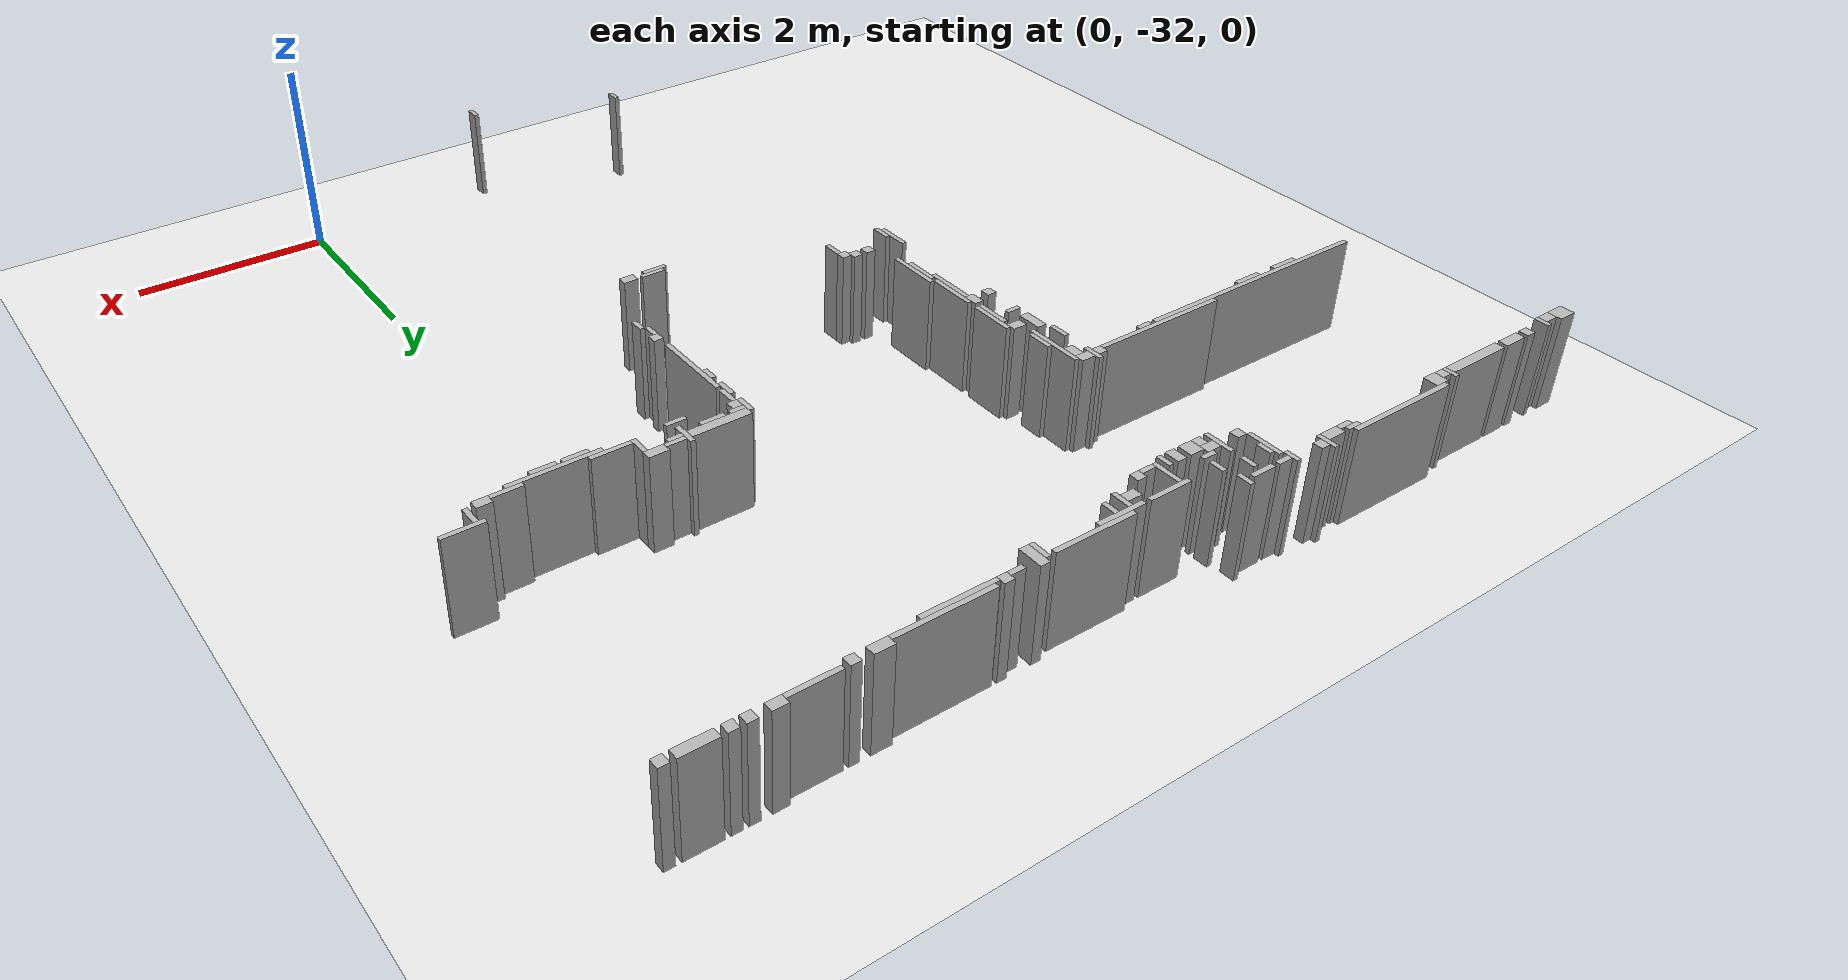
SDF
<sdf version="1.8">
 <world name="building">
  <model name="ground_plane">
   <static>true</static>
   <link name="link">
    <collision name="c"><geometry><plane><normal>0 0 1</normal><size>200 200</size></plane></geometry></collision>
    <visual name="v">
     <geometry><plane><normal>0 0 1</normal><size>200 200</size></plane></geometry>
     <material><ambient>0.9 0.9 0.9 1</ambient><diffuse>0.9 0.9 0.9 1</diffuse></material>
    </visual>
   </link>
  </model>
  <model name="walls">
   <static>true</static>
   <link name="wall_795">
    <pose>-4.975 -22.200 0.500 0 0 0</pose>
    <collision name="c"><geometry><box><size>0.050 0.200 1.000</size></box></geometry></collision>
    <visual name="v">
     <geometry><box><size>0.050 0.200 1.000</size></box></geometry>
     <material><ambient>0.6 0.6 0.6 1</ambient><diffuse>0.7 0.7 0.7 1</diffuse></material>
    </visual>
   </link>
   <link name="wall_801">
    <pose>-5.900 -22.175 0.500 0 0 0</pose>
    <collision name="c"><geometry><box><size>1.200 0.050 1.000</size></box></geometry></collision>
    <visual name="v">
     <geometry><box><size>1.200 0.050 1.000</size></box></geometry>
     <material><ambient>0.6 0.6 0.6 1</ambient><diffuse>0.7 0.7 0.7 1</diffuse></material>
    </visual>
   </link>
   <link name="wall_802">
    <pose>-4.900 -22.200 0.500 0 0 0</pose>
    <collision name="c"><geometry><box><size>0.100 0.100 1.000</size></box></geometry></collision>
    <visual name="v">
     <geometry><box><size>0.100 0.100 1.000</size></box></geometry>
     <material><ambient>0.6 0.6 0.6 1</ambient><diffuse>0.7 0.7 0.7 1</diffuse></material>
    </visual>
   </link>
   <link name="wall_803">
    <pose>-4.575 -22.225 0.500 0 0 0</pose>
    <collision name="c"><geometry><box><size>0.050 0.150 1.000</size></box></geometry></collision>
    <visual name="v">
     <geometry><box><size>0.050 0.150 1.000</size></box></geometry>
     <material><ambient>0.6 0.6 0.6 1</ambient><diffuse>0.7 0.7 0.7 1</diffuse></material>
    </visual>
   </link>
   <link name="wall_804">
    <pose>-4.025 -22.225 0.500 0 0 0</pose>
    <collision name="c"><geometry><box><size>0.050 0.150 1.000</size></box></geometry></collision>
    <visual name="v">
     <geometry><box><size>0.050 0.150 1.000</size></box></geometry>
     <material><ambient>0.6 0.6 0.6 1</ambient><diffuse>0.7 0.7 0.7 1</diffuse></material>
    </visual>
   </link>
   <link name="wall_814">
    <pose>-6.675 -22.275 0.500 0 0 0</pose>
    <collision name="c"><geometry><box><size>0.050 0.150 1.000</size></box></geometry></collision>
    <visual name="v">
     <geometry><box><size>0.050 0.150 1.000</size></box></geometry>
     <material><ambient>0.6 0.6 0.6 1</ambient><diffuse>0.7 0.7 0.7 1</diffuse></material>
    </visual>
   </link>
   <link name="wall_815">
    <pose>-6.475 -22.275 0.500 0 0 0</pose>
    <collision name="c"><geometry><box><size>0.150 0.150 1.000</size></box></geometry></collision>
    <visual name="v">
     <geometry><box><size>0.150 0.150 1.000</size></box></geometry>
     <material><ambient>0.6 0.6 0.6 1</ambient><diffuse>0.7 0.7 0.7 1</diffuse></material>
    </visual>
   </link>
   <link name="wall_816">
    <pose>-5.325 -22.225 0.500 0 0 0</pose>
    <collision name="c"><geometry><box><size>0.150 0.050 1.000</size></box></geometry></collision>
    <visual name="v">
     <geometry><box><size>0.150 0.050 1.000</size></box></geometry>
     <material><ambient>0.6 0.6 0.6 1</ambient><diffuse>0.7 0.7 0.7 1</diffuse></material>
    </visual>
   </link>
   <link name="wall_817">
    <pose>-5.100 -22.250 0.500 0 0 0</pose>
    <collision name="c"><geometry><box><size>0.200 0.100 1.000</size></box></geometry></collision>
    <visual name="v">
     <geometry><box><size>0.200 0.100 1.000</size></box></geometry>
     <material><ambient>0.6 0.6 0.6 1</ambient><diffuse>0.7 0.7 0.7 1</diffuse></material>
    </visual>
   </link>
   <link name="wall_818">
    <pose>-4.475 -22.225 0.500 0 0 0</pose>
    <collision name="c"><geometry><box><size>0.150 0.050 1.000</size></box></geometry></collision>
    <visual name="v">
     <geometry><box><size>0.150 0.050 1.000</size></box></geometry>
     <material><ambient>0.6 0.6 0.6 1</ambient><diffuse>0.7 0.7 0.7 1</diffuse></material>
    </visual>
   </link>
   <link name="wall_819">
    <pose>-4.225 -22.225 0.500 0 0 0</pose>
    <collision name="c"><geometry><box><size>0.250 0.050 1.000</size></box></geometry></collision>
    <visual name="v">
     <geometry><box><size>0.250 0.050 1.000</size></box></geometry>
     <material><ambient>0.6 0.6 0.6 1</ambient><diffuse>0.7 0.7 0.7 1</diffuse></material>
    </visual>
   </link>
   <link name="wall_829">
    <pose>-8.350 -22.325 0.500 0 0 0</pose>
    <collision name="c"><geometry><box><size>0.200 0.150 1.000</size></box></geometry></collision>
    <visual name="v">
     <geometry><box><size>0.200 0.150 1.000</size></box></geometry>
     <material><ambient>0.6 0.6 0.6 1</ambient><diffuse>0.7 0.7 0.7 1</diffuse></material>
    </visual>
   </link>
   <link name="wall_830">
    <pose>-8.075 -22.325 0.500 0 0 0</pose>
    <collision name="c"><geometry><box><size>0.050 0.150 1.000</size></box></geometry></collision>
    <visual name="v">
     <geometry><box><size>0.050 0.150 1.000</size></box></geometry>
     <material><ambient>0.6 0.6 0.6 1</ambient><diffuse>0.7 0.7 0.7 1</diffuse></material>
    </visual>
   </link>
   <link name="wall_831">
    <pose>-7.800 -22.300 0.500 0 0 0</pose>
    <collision name="c"><geometry><box><size>0.100 0.100 1.000</size></box></geometry></collision>
    <visual name="v">
     <geometry><box><size>0.100 0.100 1.000</size></box></geometry>
     <material><ambient>0.6 0.6 0.6 1</ambient><diffuse>0.7 0.7 0.7 1</diffuse></material>
    </visual>
   </link>
   <link name="wall_832">
    <pose>-7.575 -22.300 0.500 0 0 0</pose>
    <collision name="c"><geometry><box><size>0.250 0.100 1.000</size></box></geometry></collision>
    <visual name="v">
     <geometry><box><size>0.250 0.100 1.000</size></box></geometry>
     <material><ambient>0.6 0.6 0.6 1</ambient><diffuse>0.7 0.7 0.7 1</diffuse></material>
    </visual>
   </link>
   <link name="wall_833">
    <pose>-7.050 -22.300 0.500 0 0 0</pose>
    <collision name="c"><geometry><box><size>0.700 0.100 1.000</size></box></geometry></collision>
    <visual name="v">
     <geometry><box><size>0.700 0.100 1.000</size></box></geometry>
     <material><ambient>0.6 0.6 0.6 1</ambient><diffuse>0.7 0.7 0.7 1</diffuse></material>
    </visual>
   </link>
   <link name="wall_834">
    <pose>-6.600 -22.300 0.500 0 0 0</pose>
    <collision name="c"><geometry><box><size>0.100 0.100 1.000</size></box></geometry></collision>
    <visual name="v">
     <geometry><box><size>0.100 0.100 1.000</size></box></geometry>
     <material><ambient>0.6 0.6 0.6 1</ambient><diffuse>0.7 0.7 0.7 1</diffuse></material>
    </visual>
   </link>
   <link name="wall_835">
    <pose>-5.275 -22.275 0.500 0 0 0</pose>
    <collision name="c"><geometry><box><size>0.150 0.050 1.000</size></box></geometry></collision>
    <visual name="v">
     <geometry><box><size>0.150 0.050 1.000</size></box></geometry>
     <material><ambient>0.6 0.6 0.6 1</ambient><diffuse>0.7 0.7 0.7 1</diffuse></material>
    </visual>
   </link>
   <link name="wall_836">
    <pose>0.475 -22.300 0.500 0 0 0</pose>
    <collision name="c"><geometry><box><size>0.150 0.100 1.000</size></box></geometry></collision>
    <visual name="v">
     <geometry><box><size>0.150 0.100 1.000</size></box></geometry>
     <material><ambient>0.6 0.6 0.6 1</ambient><diffuse>0.7 0.7 0.7 1</diffuse></material>
    </visual>
   </link>
   <link name="wall_837">
    <pose>0.700 -22.300 0.500 0 0 0</pose>
    <collision name="c"><geometry><box><size>0.100 0.100 1.000</size></box></geometry></collision>
    <visual name="v">
     <geometry><box><size>0.100 0.100 1.000</size></box></geometry>
     <material><ambient>0.6 0.6 0.6 1</ambient><diffuse>0.7 0.7 0.7 1</diffuse></material>
    </visual>
   </link>
   <link name="wall_838">
    <pose>0.850 -22.300 0.500 0 0 0</pose>
    <collision name="c"><geometry><box><size>0.100 0.100 1.000</size></box></geometry></collision>
    <visual name="v">
     <geometry><box><size>0.100 0.100 1.000</size></box></geometry>
     <material><ambient>0.6 0.6 0.6 1</ambient><diffuse>0.7 0.7 0.7 1</diffuse></material>
    </visual>
   </link>
   <link name="wall_839">
    <pose>1.125 -22.300 0.500 0 0 0</pose>
    <collision name="c"><geometry><box><size>0.350 0.100 1.000</size></box></geometry></collision>
    <visual name="v">
     <geometry><box><size>0.350 0.100 1.000</size></box></geometry>
     <material><ambient>0.6 0.6 0.6 1</ambient><diffuse>0.7 0.7 0.7 1</diffuse></material>
    </visual>
   </link>
   <link name="wall_840">
    <pose>1.400 -22.300 0.500 0 0 0</pose>
    <collision name="c"><geometry><box><size>0.100 0.100 1.000</size></box></geometry></collision>
    <visual name="v">
     <geometry><box><size>0.100 0.100 1.000</size></box></geometry>
     <material><ambient>0.6 0.6 0.6 1</ambient><diffuse>0.7 0.7 0.7 1</diffuse></material>
    </visual>
   </link>
   <link name="wall_852">
    <pose>-8.175 -22.350 0.500 0 0 0</pose>
    <collision name="c"><geometry><box><size>0.150 0.100 1.000</size></box></geometry></collision>
    <visual name="v">
     <geometry><box><size>0.150 0.100 1.000</size></box></geometry>
     <material><ambient>0.6 0.6 0.6 1</ambient><diffuse>0.7 0.7 0.7 1</diffuse></material>
    </visual>
   </link>
   <link name="wall_853">
    <pose>-4.525 -22.475 0.500 0 0 0</pose>
    <collision name="c"><geometry><box><size>0.050 0.350 1.000</size></box></geometry></collision>
    <visual name="v">
     <geometry><box><size>0.050 0.350 1.000</size></box></geometry>
     <material><ambient>0.6 0.6 0.6 1</ambient><diffuse>0.7 0.7 0.7 1</diffuse></material>
    </visual>
   </link>
   <link name="wall_854">
    <pose>-4.225 -22.375 0.500 0 0 0</pose>
    <collision name="c"><geometry><box><size>0.050 0.150 1.000</size></box></geometry></collision>
    <visual name="v">
     <geometry><box><size>0.050 0.150 1.000</size></box></geometry>
     <material><ambient>0.6 0.6 0.6 1</ambient><diffuse>0.7 0.7 0.7 1</diffuse></material>
    </visual>
   </link>
   <link name="wall_855">
    <pose>-0.450 -22.350 0.500 0 0 0</pose>
    <collision name="c"><geometry><box><size>0.200 0.100 1.000</size></box></geometry></collision>
    <visual name="v">
     <geometry><box><size>0.200 0.100 1.000</size></box></geometry>
     <material><ambient>0.6 0.6 0.6 1</ambient><diffuse>0.7 0.7 0.7 1</diffuse></material>
    </visual>
   </link>
   <link name="wall_856">
    <pose>-0.200 -22.350 0.500 0 0 0</pose>
    <collision name="c"><geometry><box><size>0.100 0.100 1.000</size></box></geometry></collision>
    <visual name="v">
     <geometry><box><size>0.100 0.100 1.000</size></box></geometry>
     <material><ambient>0.6 0.6 0.6 1</ambient><diffuse>0.7 0.7 0.7 1</diffuse></material>
    </visual>
   </link>
   <link name="wall_857">
    <pose>0.150 -22.325 0.500 0 0 0</pose>
    <collision name="c"><geometry><box><size>0.500 0.050 1.000</size></box></geometry></collision>
    <visual name="v">
     <geometry><box><size>0.500 0.050 1.000</size></box></geometry>
     <material><ambient>0.6 0.6 0.6 1</ambient><diffuse>0.7 0.7 0.7 1</diffuse></material>
    </visual>
   </link>
   <link name="wall_870">
    <pose>-4.475 -22.425 0.500 0 0 0</pose>
    <collision name="c"><geometry><box><size>0.050 0.150 1.000</size></box></geometry></collision>
    <visual name="v">
     <geometry><box><size>0.050 0.150 1.000</size></box></geometry>
     <material><ambient>0.6 0.6 0.6 1</ambient><diffuse>0.7 0.7 0.7 1</diffuse></material>
    </visual>
   </link>
   <link name="wall_871">
    <pose>-2.000 -22.475 0.500 0 0 0</pose>
    <collision name="c"><geometry><box><size>0.100 0.250 1.000</size></box></geometry></collision>
    <visual name="v">
     <geometry><box><size>0.100 0.250 1.000</size></box></geometry>
     <material><ambient>0.6 0.6 0.6 1</ambient><diffuse>0.7 0.7 0.7 1</diffuse></material>
    </visual>
   </link>
   <link name="wall_872">
    <pose>-1.650 -22.400 0.500 0 0 0</pose>
    <collision name="c"><geometry><box><size>0.100 0.100 1.000</size></box></geometry></collision>
    <visual name="v">
     <geometry><box><size>0.100 0.100 1.000</size></box></geometry>
     <material><ambient>0.6 0.6 0.6 1</ambient><diffuse>0.7 0.7 0.7 1</diffuse></material>
    </visual>
   </link>
   <link name="wall_873">
    <pose>-1.050 -22.375 0.500 0 0 0</pose>
    <collision name="c"><geometry><box><size>1.000 0.050 1.000</size></box></geometry></collision>
    <visual name="v">
     <geometry><box><size>1.000 0.050 1.000</size></box></geometry>
     <material><ambient>0.6 0.6 0.6 1</ambient><diffuse>0.7 0.7 0.7 1</diffuse></material>
    </visual>
   </link>
   <link name="wall_880">
    <pose>-3.975 -22.475 0.500 0 0 0</pose>
    <collision name="c"><geometry><box><size>0.050 0.150 1.000</size></box></geometry></collision>
    <visual name="v">
     <geometry><box><size>0.050 0.150 1.000</size></box></geometry>
     <material><ambient>0.6 0.6 0.6 1</ambient><diffuse>0.7 0.7 0.7 1</diffuse></material>
    </visual>
   </link>
   <link name="wall_881">
    <pose>-2.575 -22.425 0.500 0 0 0</pose>
    <collision name="c"><geometry><box><size>0.850 0.050 1.000</size></box></geometry></collision>
    <visual name="v">
     <geometry><box><size>0.850 0.050 1.000</size></box></geometry>
     <material><ambient>0.6 0.6 0.6 1</ambient><diffuse>0.7 0.7 0.7 1</diffuse></material>
    </visual>
   </link>
   <link name="wall_882">
    <pose>-2.075 -22.500 0.500 0 0 0</pose>
    <collision name="c"><geometry><box><size>0.050 0.200 1.000</size></box></geometry></collision>
    <visual name="v">
     <geometry><box><size>0.050 0.200 1.000</size></box></geometry>
     <material><ambient>0.6 0.6 0.6 1</ambient><diffuse>0.7 0.7 0.7 1</diffuse></material>
    </visual>
   </link>
   <link name="wall_883">
    <pose>-1.775 -22.425 0.500 0 0 0</pose>
    <collision name="c"><geometry><box><size>0.150 0.050 1.000</size></box></geometry></collision>
    <visual name="v">
     <geometry><box><size>0.150 0.050 1.000</size></box></geometry>
     <material><ambient>0.6 0.6 0.6 1</ambient><diffuse>0.7 0.7 0.7 1</diffuse></material>
    </visual>
   </link>
   <link name="wall_884">
    <pose>-1.225 -22.425 0.500 0 0 0</pose>
    <collision name="c"><geometry><box><size>0.750 0.050 1.000</size></box></geometry></collision>
    <visual name="v">
     <geometry><box><size>0.750 0.050 1.000</size></box></geometry>
     <material><ambient>0.6 0.6 0.6 1</ambient><diffuse>0.7 0.7 0.7 1</diffuse></material>
    </visual>
   </link>
   <link name="wall_887">
    <pose>-3.425 -22.475 0.500 0 0 0</pose>
    <collision name="c"><geometry><box><size>0.450 0.050 1.000</size></box></geometry></collision>
    <visual name="v">
     <geometry><box><size>0.450 0.050 1.000</size></box></geometry>
     <material><ambient>0.6 0.6 0.6 1</ambient><diffuse>0.7 0.7 0.7 1</diffuse></material>
    </visual>
   </link>
   <link name="wall_888">
    <pose>-2.900 -22.475 0.500 0 0 0</pose>
    <collision name="c"><geometry><box><size>0.500 0.050 1.000</size></box></geometry></collision>
    <visual name="v">
     <geometry><box><size>0.500 0.050 1.000</size></box></geometry>
     <material><ambient>0.6 0.6 0.6 1</ambient><diffuse>0.7 0.7 0.7 1</diffuse></material>
    </visual>
   </link>
   <link name="wall_891">
    <pose>-3.575 -22.650 0.500 0 0 0</pose>
    <collision name="c"><geometry><box><size>0.050 0.300 1.000</size></box></geometry></collision>
    <visual name="v">
     <geometry><box><size>0.050 0.300 1.000</size></box></geometry>
     <material><ambient>0.6 0.6 0.6 1</ambient><diffuse>0.7 0.7 0.7 1</diffuse></material>
    </visual>
   </link>
   <link name="wall_892">
    <pose>-3.025 -22.600 0.500 0 0 0</pose>
    <collision name="c"><geometry><box><size>0.050 0.200 1.000</size></box></geometry></collision>
    <visual name="v">
     <geometry><box><size>0.050 0.200 1.000</size></box></geometry>
     <material><ambient>0.6 0.6 0.6 1</ambient><diffuse>0.7 0.7 0.7 1</diffuse></material>
    </visual>
   </link>
   <link name="wall_893">
    <pose>-2.875 -22.575 0.500 0 0 0</pose>
    <collision name="c"><geometry><box><size>0.050 0.150 1.000</size></box></geometry></collision>
    <visual name="v">
     <geometry><box><size>0.050 0.150 1.000</size></box></geometry>
     <material><ambient>0.6 0.6 0.6 1</ambient><diffuse>0.7 0.7 0.7 1</diffuse></material>
    </visual>
   </link>
   <link name="wall_894">
    <pose>-4.225 -22.700 0.500 0 0 0</pose>
    <collision name="c"><geometry><box><size>0.050 0.300 1.000</size></box></geometry></collision>
    <visual name="v">
     <geometry><box><size>0.050 0.300 1.000</size></box></geometry>
     <material><ambient>0.6 0.6 0.6 1</ambient><diffuse>0.7 0.7 0.7 1</diffuse></material>
    </visual>
   </link>
   <link name="wall_895">
    <pose>-3.125 -22.600 0.500 0 0 0</pose>
    <collision name="c"><geometry><box><size>0.150 0.100 1.000</size></box></geometry></collision>
    <visual name="v">
     <geometry><box><size>0.150 0.100 1.000</size></box></geometry>
     <material><ambient>0.6 0.6 0.6 1</ambient><diffuse>0.7 0.7 0.7 1</diffuse></material>
    </visual>
   </link>
   <link name="wall_896">
    <pose>-4.025 -22.625 0.500 0 0 0</pose>
    <collision name="c"><geometry><box><size>0.150 0.050 1.000</size></box></geometry></collision>
    <visual name="v">
     <geometry><box><size>0.150 0.050 1.000</size></box></geometry>
     <material><ambient>0.6 0.6 0.6 1</ambient><diffuse>0.7 0.7 0.7 1</diffuse></material>
    </visual>
   </link>
   <link name="wall_897">
    <pose>-4.450 -22.700 0.500 0 0 0</pose>
    <collision name="c"><geometry><box><size>0.100 0.100 1.000</size></box></geometry></collision>
    <visual name="v">
     <geometry><box><size>0.100 0.100 1.000</size></box></geometry>
     <material><ambient>0.6 0.6 0.6 1</ambient><diffuse>0.7 0.7 0.7 1</diffuse></material>
    </visual>
   </link>
   <link name="wall_898">
    <pose>-4.125 -22.700 0.500 0 0 0</pose>
    <collision name="c"><geometry><box><size>0.150 0.100 1.000</size></box></geometry></collision>
    <visual name="v">
     <geometry><box><size>0.150 0.100 1.000</size></box></geometry>
     <material><ambient>0.6 0.6 0.6 1</ambient><diffuse>0.7 0.7 0.7 1</diffuse></material>
    </visual>
   </link>
   <link name="wall_899">
    <pose>-3.975 -22.775 0.500 0 0 0</pose>
    <collision name="c"><geometry><box><size>0.150 0.150 1.000</size></box></geometry></collision>
    <visual name="v">
     <geometry><box><size>0.150 0.150 1.000</size></box></geometry>
     <material><ambient>0.6 0.6 0.6 1</ambient><diffuse>0.7 0.7 0.7 1</diffuse></material>
    </visual>
   </link>
   <link name="wall_900">
    <pose>-3.800 -22.775 0.500 0 0 0</pose>
    <collision name="c"><geometry><box><size>0.100 0.150 1.000</size></box></geometry></collision>
    <visual name="v">
     <geometry><box><size>0.100 0.150 1.000</size></box></geometry>
     <material><ambient>0.6 0.6 0.6 1</ambient><diffuse>0.7 0.7 0.7 1</diffuse></material>
    </visual>
   </link>
   <link name="wall_901">
    <pose>-3.675 -22.775 0.500 0 0 0</pose>
    <collision name="c"><geometry><box><size>0.050 0.150 1.000</size></box></geometry></collision>
    <visual name="v">
     <geometry><box><size>0.050 0.150 1.000</size></box></geometry>
     <material><ambient>0.6 0.6 0.6 1</ambient><diffuse>0.7 0.7 0.7 1</diffuse></material>
    </visual>
   </link>
   <link name="wall_902">
    <pose>-3.350 -22.750 0.500 0 0 0</pose>
    <collision name="c"><geometry><box><size>0.100 0.100 1.000</size></box></geometry></collision>
    <visual name="v">
     <geometry><box><size>0.100 0.100 1.000</size></box></geometry>
     <material><ambient>0.6 0.6 0.6 1</ambient><diffuse>0.7 0.7 0.7 1</diffuse></material>
    </visual>
   </link>
   <link name="wall_903">
    <pose>-4.100 -22.800 0.500 0 0 0</pose>
    <collision name="c"><geometry><box><size>0.100 0.100 1.000</size></box></geometry></collision>
    <visual name="v">
     <geometry><box><size>0.100 0.100 1.000</size></box></geometry>
     <material><ambient>0.6 0.6 0.6 1</ambient><diffuse>0.7 0.7 0.7 1</diffuse></material>
    </visual>
   </link>
   <link name="wall_904">
    <pose>-3.475 -22.775 0.500 0 0 0</pose>
    <collision name="c"><geometry><box><size>0.150 0.050 1.000</size></box></geometry></collision>
    <visual name="v">
     <geometry><box><size>0.150 0.050 1.000</size></box></geometry>
     <material><ambient>0.6 0.6 0.6 1</ambient><diffuse>0.7 0.7 0.7 1</diffuse></material>
    </visual>
   </link>
   <link name="wall_921">
    <pose>-4.325 -24.300 0.500 0 0 0</pose>
    <collision name="c"><geometry><box><size>0.050 0.200 1.000</size></box></geometry></collision>
    <visual name="v">
     <geometry><box><size>0.050 0.200 1.000</size></box></geometry>
     <material><ambient>0.6 0.6 0.6 1</ambient><diffuse>0.7 0.7 0.7 1</diffuse></material>
    </visual>
   </link>
   <link name="wall_925">
    <pose>-4.400 -24.300 0.500 0 0 0</pose>
    <collision name="c"><geometry><box><size>0.100 0.100 1.000</size></box></geometry></collision>
    <visual name="v">
     <geometry><box><size>0.100 0.100 1.000</size></box></geometry>
     <material><ambient>0.6 0.6 0.6 1</ambient><diffuse>0.7 0.7 0.7 1</diffuse></material>
    </visual>
   </link>
   <link name="wall_926">
    <pose>-4.225 -24.300 0.500 0 0 0</pose>
    <collision name="c"><geometry><box><size>0.150 0.100 1.000</size></box></geometry></collision>
    <visual name="v">
     <geometry><box><size>0.150 0.100 1.000</size></box></geometry>
     <material><ambient>0.6 0.6 0.6 1</ambient><diffuse>0.7 0.7 0.7 1</diffuse></material>
    </visual>
   </link>
   <link name="wall_934">
    <pose>-5.175 -24.325 0.500 0 0 0</pose>
    <collision name="c"><geometry><box><size>1.450 0.050 1.000</size></box></geometry></collision>
    <visual name="v">
     <geometry><box><size>1.450 0.050 1.000</size></box></geometry>
     <material><ambient>0.6 0.6 0.6 1</ambient><diffuse>0.7 0.7 0.7 1</diffuse></material>
    </visual>
   </link>
   <link name="wall_935">
    <pose>-4.125 -24.600 0.500 0 0 0</pose>
    <collision name="c"><geometry><box><size>0.050 0.600 1.000</size></box></geometry></collision>
    <visual name="v">
     <geometry><box><size>0.050 0.600 1.000</size></box></geometry>
     <material><ambient>0.6 0.6 0.6 1</ambient><diffuse>0.7 0.7 0.7 1</diffuse></material>
    </visual>
   </link>
   <link name="wall_942">
    <pose>-6.475 -24.375 0.500 0 0 0</pose>
    <collision name="c"><geometry><box><size>2.650 0.050 1.000</size></box></geometry></collision>
    <visual name="v">
     <geometry><box><size>2.650 0.050 1.000</size></box></geometry>
     <material><ambient>0.6 0.6 0.6 1</ambient><diffuse>0.7 0.7 0.7 1</diffuse></material>
    </visual>
   </link>
   <link name="wall_943">
    <pose>-5.025 -24.375 0.500 0 0 0</pose>
    <collision name="c"><geometry><box><size>0.150 0.050 1.000</size></box></geometry></collision>
    <visual name="v">
     <geometry><box><size>0.150 0.050 1.000</size></box></geometry>
     <material><ambient>0.6 0.6 0.6 1</ambient><diffuse>0.7 0.7 0.7 1</diffuse></material>
    </visual>
   </link>
   <link name="wall_944">
    <pose>-4.200 -24.425 0.500 0 0 0</pose>
    <collision name="c"><geometry><box><size>0.100 0.150 1.000</size></box></geometry></collision>
    <visual name="v">
     <geometry><box><size>0.100 0.150 1.000</size></box></geometry>
     <material><ambient>0.6 0.6 0.6 1</ambient><diffuse>0.7 0.7 0.7 1</diffuse></material>
    </visual>
   </link>
   <link name="wall_948">
    <pose>-6.950 -24.425 0.500 0 0 0</pose>
    <collision name="c"><geometry><box><size>0.300 0.050 1.000</size></box></geometry></collision>
    <visual name="v">
     <geometry><box><size>0.300 0.050 1.000</size></box></geometry>
     <material><ambient>0.6 0.6 0.6 1</ambient><diffuse>0.7 0.7 0.7 1</diffuse></material>
    </visual>
   </link>
   <link name="wall_949">
    <pose>-6.450 -24.425 0.500 0 0 0</pose>
    <collision name="c"><geometry><box><size>0.300 0.050 1.000</size></box></geometry></collision>
    <visual name="v">
     <geometry><box><size>0.300 0.050 1.000</size></box></geometry>
     <material><ambient>0.6 0.6 0.6 1</ambient><diffuse>0.7 0.7 0.7 1</diffuse></material>
    </visual>
   </link>
   <link name="wall_989">
    <pose>-4.075 -24.725 0.500 0 0 0</pose>
    <collision name="c"><geometry><box><size>0.050 0.250 1.000</size></box></geometry></collision>
    <visual name="v">
     <geometry><box><size>0.050 0.250 1.000</size></box></geometry>
     <material><ambient>0.6 0.6 0.6 1</ambient><diffuse>0.7 0.7 0.7 1</diffuse></material>
    </visual>
   </link>
   <link name="wall_1000">
    <pose>-4.325 -24.750 0.500 0 0 0</pose>
    <collision name="c"><geometry><box><size>0.050 0.200 1.000</size></box></geometry></collision>
    <visual name="v">
     <geometry><box><size>0.050 0.200 1.000</size></box></geometry>
     <material><ambient>0.6 0.6 0.6 1</ambient><diffuse>0.7 0.7 0.7 1</diffuse></material>
    </visual>
   </link>
   <link name="wall_1023">
    <pose>-4.250 -25.025 0.500 0 0 0</pose>
    <collision name="c"><geometry><box><size>0.100 0.250 1.000</size></box></geometry></collision>
    <visual name="v">
     <geometry><box><size>0.100 0.250 1.000</size></box></geometry>
     <material><ambient>0.6 0.6 0.6 1</ambient><diffuse>0.7 0.7 0.7 1</diffuse></material>
    </visual>
   </link>
   <link name="wall_1026">
    <pose>-4.075 -25.050 0.500 0 0 0</pose>
    <collision name="c"><geometry><box><size>0.150 0.100 1.000</size></box></geometry></collision>
    <visual name="v">
     <geometry><box><size>0.150 0.100 1.000</size></box></geometry>
     <material><ambient>0.6 0.6 0.6 1</ambient><diffuse>0.7 0.7 0.7 1</diffuse></material>
    </visual>
   </link>
   <link name="wall_1028">
    <pose>-3.975 -25.275 0.500 0 0 0</pose>
    <collision name="c"><geometry><box><size>0.050 0.450 1.000</size></box></geometry></collision>
    <visual name="v">
     <geometry><box><size>0.050 0.450 1.000</size></box></geometry>
     <material><ambient>0.6 0.6 0.6 1</ambient><diffuse>0.7 0.7 0.7 1</diffuse></material>
    </visual>
   </link>
   <link name="wall_1033">
    <pose>-4.025 -25.325 0.500 0 0 0</pose>
    <collision name="c"><geometry><box><size>0.050 0.350 1.000</size></box></geometry></collision>
    <visual name="v">
     <geometry><box><size>0.050 0.350 1.000</size></box></geometry>
     <material><ambient>0.6 0.6 0.6 1</ambient><diffuse>0.7 0.7 0.7 1</diffuse></material>
    </visual>
   </link>
   <link name="wall_1036">
    <pose>-0.675 -25.325 0.500 0 0 0</pose>
    <collision name="c"><geometry><box><size>0.050 0.250 1.000</size></box></geometry></collision>
    <visual name="v">
     <geometry><box><size>0.050 0.250 1.000</size></box></geometry>
     <material><ambient>0.6 0.6 0.6 1</ambient><diffuse>0.7 0.7 0.7 1</diffuse></material>
    </visual>
   </link>
   <link name="wall_1037">
    <pose>-0.350 -25.250 0.500 0 0 0</pose>
    <collision name="c"><geometry><box><size>0.200 0.100 1.000</size></box></geometry></collision>
    <visual name="v">
     <geometry><box><size>0.200 0.100 1.000</size></box></geometry>
     <material><ambient>0.6 0.6 0.6 1</ambient><diffuse>0.7 0.7 0.7 1</diffuse></material>
    </visual>
   </link>
   <link name="wall_1038">
    <pose>1.400 -25.225 0.500 0 0 0</pose>
    <collision name="c"><geometry><box><size>0.400 0.050 1.000</size></box></geometry></collision>
    <visual name="v">
     <geometry><box><size>0.400 0.050 1.000</size></box></geometry>
     <material><ambient>0.6 0.6 0.6 1</ambient><diffuse>0.7 0.7 0.7 1</diffuse></material>
    </visual>
   </link>
   <link name="wall_1041">
    <pose>-4.225 -25.275 0.500 0 0 0</pose>
    <collision name="c"><geometry><box><size>0.150 0.050 1.000</size></box></geometry></collision>
    <visual name="v">
     <geometry><box><size>0.150 0.050 1.000</size></box></geometry>
     <material><ambient>0.6 0.6 0.6 1</ambient><diffuse>0.7 0.7 0.7 1</diffuse></material>
    </visual>
   </link>
   <link name="wall_1042">
    <pose>-1.000 -25.300 0.500 0 0 0</pose>
    <collision name="c"><geometry><box><size>0.600 0.100 1.000</size></box></geometry></collision>
    <visual name="v">
     <geometry><box><size>0.600 0.100 1.000</size></box></geometry>
     <material><ambient>0.6 0.6 0.6 1</ambient><diffuse>0.7 0.7 0.7 1</diffuse></material>
    </visual>
   </link>
   <link name="wall_1043">
    <pose>-0.550 -25.275 0.500 0 0 0</pose>
    <collision name="c"><geometry><box><size>0.200 0.050 1.000</size></box></geometry></collision>
    <visual name="v">
     <geometry><box><size>0.200 0.050 1.000</size></box></geometry>
     <material><ambient>0.6 0.6 0.6 1</ambient><diffuse>0.7 0.7 0.7 1</diffuse></material>
    </visual>
   </link>
   <link name="wall_1044">
    <pose>1.275 -25.350 0.500 0 0 0</pose>
    <collision name="c"><geometry><box><size>0.050 0.200 1.000</size></box></geometry></collision>
    <visual name="v">
     <geometry><box><size>0.050 0.200 1.000</size></box></geometry>
     <material><ambient>0.6 0.6 0.6 1</ambient><diffuse>0.7 0.7 0.7 1</diffuse></material>
    </visual>
   </link>
   <link name="wall_1047">
    <pose>-1.325 -25.400 0.500 0 0 0</pose>
    <collision name="c"><geometry><box><size>0.050 0.200 1.000</size></box></geometry></collision>
    <visual name="v">
     <geometry><box><size>0.050 0.200 1.000</size></box></geometry>
     <material><ambient>0.6 0.6 0.6 1</ambient><diffuse>0.7 0.7 0.7 1</diffuse></material>
    </visual>
   </link>
   <link name="wall_1048">
    <pose>-0.575 -25.325 0.500 0 0 0</pose>
    <collision name="c"><geometry><box><size>0.150 0.050 1.000</size></box></geometry></collision>
    <visual name="v">
     <geometry><box><size>0.150 0.050 1.000</size></box></geometry>
     <material><ambient>0.6 0.6 0.6 1</ambient><diffuse>0.7 0.7 0.7 1</diffuse></material>
    </visual>
   </link>
   <link name="wall_1049">
    <pose>-0.275 -25.400 0.500 0 0 0</pose>
    <collision name="c"><geometry><box><size>0.050 0.200 1.000</size></box></geometry></collision>
    <visual name="v">
     <geometry><box><size>0.050 0.200 1.000</size></box></geometry>
     <material><ambient>0.6 0.6 0.6 1</ambient><diffuse>0.7 0.7 0.7 1</diffuse></material>
    </visual>
   </link>
   <link name="wall_1052">
    <pose>-1.225 -25.375 0.500 0 0 0</pose>
    <collision name="c"><geometry><box><size>0.150 0.050 1.000</size></box></geometry></collision>
    <visual name="v">
     <geometry><box><size>0.150 0.050 1.000</size></box></geometry>
     <material><ambient>0.6 0.6 0.6 1</ambient><diffuse>0.7 0.7 0.7 1</diffuse></material>
    </visual>
   </link>
   <link name="wall_1053">
    <pose>-0.975 -25.375 0.500 0 0 0</pose>
    <collision name="c"><geometry><box><size>0.250 0.050 1.000</size></box></geometry></collision>
    <visual name="v">
     <geometry><box><size>0.250 0.050 1.000</size></box></geometry>
     <material><ambient>0.6 0.6 0.6 1</ambient><diffuse>0.7 0.7 0.7 1</diffuse></material>
    </visual>
   </link>
   <link name="wall_1056">
    <pose>-1.250 -25.450 0.500 0 0 0</pose>
    <collision name="c"><geometry><box><size>0.100 0.100 1.000</size></box></geometry></collision>
    <visual name="v">
     <geometry><box><size>0.100 0.100 1.000</size></box></geometry>
     <material><ambient>0.6 0.6 0.6 1</ambient><diffuse>0.7 0.7 0.7 1</diffuse></material>
    </visual>
   </link>
   <link name="wall_1057">
    <pose>1.125 -25.450 0.500 0 0 0</pose>
    <collision name="c"><geometry><box><size>0.150 0.100 1.000</size></box></geometry></collision>
    <visual name="v">
     <geometry><box><size>0.150 0.100 1.000</size></box></geometry>
     <material><ambient>0.6 0.6 0.6 1</ambient><diffuse>0.7 0.7 0.7 1</diffuse></material>
    </visual>
   </link>
   <link name="wall_1062">
    <pose>-0.050 -25.475 0.500 0 0 0</pose>
    <collision name="c"><geometry><box><size>0.400 0.050 1.000</size></box></geometry></collision>
    <visual name="v">
     <geometry><box><size>0.400 0.050 1.000</size></box></geometry>
     <material><ambient>0.6 0.6 0.6 1</ambient><diffuse>0.7 0.7 0.7 1</diffuse></material>
    </visual>
   </link>
   <link name="wall_1063">
    <pose>0.900 -25.475 0.500 0 0 0</pose>
    <collision name="c"><geometry><box><size>0.300 0.050 1.000</size></box></geometry></collision>
    <visual name="v">
     <geometry><box><size>0.300 0.050 1.000</size></box></geometry>
     <material><ambient>0.6 0.6 0.6 1</ambient><diffuse>0.7 0.7 0.7 1</diffuse></material>
    </visual>
   </link>
   <link name="wall_1066">
    <pose>-1.275 -25.600 0.500 0 0 0</pose>
    <collision name="c"><geometry><box><size>0.050 0.200 1.000</size></box></geometry></collision>
    <visual name="v">
     <geometry><box><size>0.050 0.200 1.000</size></box></geometry>
     <material><ambient>0.6 0.6 0.6 1</ambient><diffuse>0.7 0.7 0.7 1</diffuse></material>
    </visual>
   </link>
   <link name="wall_1067">
    <pose>-0.700 -25.525 0.500 0 0 0</pose>
    <collision name="c"><geometry><box><size>0.200 0.050 1.000</size></box></geometry></collision>
    <visual name="v">
     <geometry><box><size>0.200 0.050 1.000</size></box></geometry>
     <material><ambient>0.6 0.6 0.6 1</ambient><diffuse>0.7 0.7 0.7 1</diffuse></material>
    </visual>
   </link>
   <link name="wall_1068">
    <pose>0.450 -25.525 0.500 0 0 0</pose>
    <collision name="c"><geometry><box><size>0.900 0.050 1.000</size></box></geometry></collision>
    <visual name="v">
     <geometry><box><size>0.900 0.050 1.000</size></box></geometry>
     <material><ambient>0.6 0.6 0.6 1</ambient><diffuse>0.7 0.7 0.7 1</diffuse></material>
    </visual>
   </link>
   <link name="wall_1070">
    <pose>-4.050 -25.625 0.500 0 0 0</pose>
    <collision name="c"><geometry><box><size>0.100 0.150 1.000</size></box></geometry></collision>
    <visual name="v">
     <geometry><box><size>0.100 0.150 1.000</size></box></geometry>
     <material><ambient>0.6 0.6 0.6 1</ambient><diffuse>0.7 0.7 0.7 1</diffuse></material>
    </visual>
   </link>
   <link name="wall_1071">
    <pose>0.225 -25.575 0.500 0 0 0</pose>
    <collision name="c"><geometry><box><size>0.250 0.050 1.000</size></box></geometry></collision>
    <visual name="v">
     <geometry><box><size>0.250 0.050 1.000</size></box></geometry>
     <material><ambient>0.6 0.6 0.6 1</ambient><diffuse>0.7 0.7 0.7 1</diffuse></material>
    </visual>
   </link>
   <link name="wall_1072">
    <pose>0.525 -25.575 0.500 0 0 0</pose>
    <collision name="c"><geometry><box><size>0.250 0.050 1.000</size></box></geometry></collision>
    <visual name="v">
     <geometry><box><size>0.250 0.050 1.000</size></box></geometry>
     <material><ambient>0.6 0.6 0.6 1</ambient><diffuse>0.7 0.7 0.7 1</diffuse></material>
    </visual>
   </link>
   <link name="wall_1073">
    <pose>-4.250 -25.650 0.500 0 0 0</pose>
    <collision name="c"><geometry><box><size>0.100 0.100 1.000</size></box></geometry></collision>
    <visual name="v">
     <geometry><box><size>0.100 0.100 1.000</size></box></geometry>
     <material><ambient>0.6 0.6 0.6 1</ambient><diffuse>0.7 0.7 0.7 1</diffuse></material>
    </visual>
   </link>
   <link name="wall_1074">
    <pose>-3.975 -25.850 0.500 0 0 0</pose>
    <collision name="c"><geometry><box><size>0.050 0.500 1.000</size></box></geometry></collision>
    <visual name="v">
     <geometry><box><size>0.050 0.500 1.000</size></box></geometry>
     <material><ambient>0.6 0.6 0.6 1</ambient><diffuse>0.7 0.7 0.7 1</diffuse></material>
    </visual>
   </link>
   <link name="wall_1075">
    <pose>-1.325 -25.700 0.500 0 0 0</pose>
    <collision name="c"><geometry><box><size>0.050 0.200 1.000</size></box></geometry></collision>
    <visual name="v">
     <geometry><box><size>0.050 0.200 1.000</size></box></geometry>
     <material><ambient>0.6 0.6 0.6 1</ambient><diffuse>0.7 0.7 0.7 1</diffuse></material>
    </visual>
   </link>
   <link name="wall_1079">
    <pose>-4.025 -25.950 0.500 0 0 0</pose>
    <collision name="c"><geometry><box><size>0.050 0.500 1.000</size></box></geometry></collision>
    <visual name="v">
     <geometry><box><size>0.050 0.500 1.000</size></box></geometry>
     <material><ambient>0.6 0.6 0.6 1</ambient><diffuse>0.7 0.7 0.7 1</diffuse></material>
    </visual>
   </link>
   <link name="wall_1082">
    <pose>-1.275 -26.175 0.500 0 0 0</pose>
    <collision name="c"><geometry><box><size>0.050 0.850 1.000</size></box></geometry></collision>
    <visual name="v">
     <geometry><box><size>0.050 0.850 1.000</size></box></geometry>
     <material><ambient>0.6 0.6 0.6 1</ambient><diffuse>0.7 0.7 0.7 1</diffuse></material>
    </visual>
   </link>
   <link name="wall_1088">
    <pose>-1.325 -25.975 0.500 0 0 0</pose>
    <collision name="c"><geometry><box><size>0.050 0.150 1.000</size></box></geometry></collision>
    <visual name="v">
     <geometry><box><size>0.050 0.150 1.000</size></box></geometry>
     <material><ambient>0.6 0.6 0.6 1</ambient><diffuse>0.7 0.7 0.7 1</diffuse></material>
    </visual>
   </link>
   <link name="wall_1107">
    <pose>-3.925 -26.375 0.500 0 0 0</pose>
    <collision name="c"><geometry><box><size>0.050 0.550 1.000</size></box></geometry></collision>
    <visual name="v">
     <geometry><box><size>0.050 0.550 1.000</size></box></geometry>
     <material><ambient>0.6 0.6 0.6 1</ambient><diffuse>0.7 0.7 0.7 1</diffuse></material>
    </visual>
   </link>
   <link name="wall_1111">
    <pose>-3.975 -26.325 0.500 0 0 0</pose>
    <collision name="c"><geometry><box><size>0.050 0.350 1.000</size></box></geometry></collision>
    <visual name="v">
     <geometry><box><size>0.050 0.350 1.000</size></box></geometry>
     <material><ambient>0.6 0.6 0.6 1</ambient><diffuse>0.7 0.7 0.7 1</diffuse></material>
    </visual>
   </link>
   <link name="wall_1116">
    <pose>-1.250 -26.750 0.500 0 0 0</pose>
    <collision name="c"><geometry><box><size>0.100 0.100 1.000</size></box></geometry></collision>
    <visual name="v">
     <geometry><box><size>0.100 0.100 1.000</size></box></geometry>
     <material><ambient>0.6 0.6 0.6 1</ambient><diffuse>0.7 0.7 0.7 1</diffuse></material>
    </visual>
   </link>
   <link name="wall_1117">
    <pose>-1.275 -26.875 0.500 0 0 0</pose>
    <collision name="c"><geometry><box><size>0.050 0.150 1.000</size></box></geometry></collision>
    <visual name="v">
     <geometry><box><size>0.050 0.150 1.000</size></box></geometry>
     <material><ambient>0.6 0.6 0.6 1</ambient><diffuse>0.7 0.7 0.7 1</diffuse></material>
    </visual>
   </link>
   <link name="wall_1118">
    <pose>-4.175 -27.025 0.500 0 0 0</pose>
    <collision name="c"><geometry><box><size>0.050 0.350 1.000</size></box></geometry></collision>
    <visual name="v">
     <geometry><box><size>0.050 0.350 1.000</size></box></geometry>
     <material><ambient>0.6 0.6 0.6 1</ambient><diffuse>0.7 0.7 0.7 1</diffuse></material>
    </visual>
   </link>
   <link name="wall_1119">
    <pose>-3.800 -26.950 0.500 0 0 0</pose>
    <collision name="c"><geometry><box><size>0.100 0.100 1.000</size></box></geometry></collision>
    <visual name="v">
     <geometry><box><size>0.100 0.100 1.000</size></box></geometry>
     <material><ambient>0.6 0.6 0.6 1</ambient><diffuse>0.7 0.7 0.7 1</diffuse></material>
    </visual>
   </link>
   <link name="wall_1120">
    <pose>-3.650 -26.950 0.500 0 0 0</pose>
    <collision name="c"><geometry><box><size>0.100 0.100 1.000</size></box></geometry></collision>
    <visual name="v">
     <geometry><box><size>0.100 0.100 1.000</size></box></geometry>
     <material><ambient>0.6 0.6 0.6 1</ambient><diffuse>0.7 0.7 0.7 1</diffuse></material>
    </visual>
   </link>
   <link name="wall_1121">
    <pose>-3.550 -27.000 0.500 0 0 0</pose>
    <collision name="c"><geometry><box><size>0.100 0.100 1.000</size></box></geometry></collision>
    <visual name="v">
     <geometry><box><size>0.100 0.100 1.000</size></box></geometry>
     <material><ambient>0.6 0.6 0.6 1</ambient><diffuse>0.7 0.7 0.7 1</diffuse></material>
    </visual>
   </link>
   <link name="wall_1122">
    <pose>-1.225 -27.025 0.500 0 0 0</pose>
    <collision name="c"><geometry><box><size>0.050 0.150 1.000</size></box></geometry></collision>
    <visual name="v">
     <geometry><box><size>0.050 0.150 1.000</size></box></geometry>
     <material><ambient>0.6 0.6 0.6 1</ambient><diffuse>0.7 0.7 0.7 1</diffuse></material>
    </visual>
   </link>
   <link name="wall_1125">
    <pose>-4.125 -27.150 0.500 0 0 0</pose>
    <collision name="c"><geometry><box><size>0.050 0.200 1.000</size></box></geometry></collision>
    <visual name="v">
     <geometry><box><size>0.050 0.200 1.000</size></box></geometry>
     <material><ambient>0.6 0.6 0.6 1</ambient><diffuse>0.7 0.7 0.7 1</diffuse></material>
    </visual>
   </link>
   <link name="wall_1126">
    <pose>-3.525 -27.150 0.500 0 0 0</pose>
    <collision name="c"><geometry><box><size>0.050 0.200 1.000</size></box></geometry></collision>
    <visual name="v">
     <geometry><box><size>0.050 0.200 1.000</size></box></geometry>
     <material><ambient>0.6 0.6 0.6 1</ambient><diffuse>0.7 0.7 0.7 1</diffuse></material>
    </visual>
   </link>
   <link name="wall_1131">
    <pose>-1.825 -27.775 0.500 0 0 0</pose>
    <collision name="c"><geometry><box><size>0.250 0.050 1.000</size></box></geometry></collision>
    <visual name="v">
     <geometry><box><size>0.250 0.050 1.000</size></box></geometry>
     <material><ambient>0.6 0.6 0.6 1</ambient><diffuse>0.7 0.7 0.7 1</diffuse></material>
    </visual>
   </link>
   <link name="wall_1132">
    <pose>-1.575 -27.800 0.500 0 0 0</pose>
    <collision name="c"><geometry><box><size>0.150 0.100 1.000</size></box></geometry></collision>
    <visual name="v">
     <geometry><box><size>0.150 0.100 1.000</size></box></geometry>
     <material><ambient>0.6 0.6 0.6 1</ambient><diffuse>0.7 0.7 0.7 1</diffuse></material>
    </visual>
   </link>
   <link name="wall_1133">
    <pose>-1.875 -27.825 0.500 0 0 0</pose>
    <collision name="c"><geometry><box><size>0.250 0.050 1.000</size></box></geometry></collision>
    <visual name="v">
     <geometry><box><size>0.250 0.050 1.000</size></box></geometry>
     <material><ambient>0.6 0.6 0.6 1</ambient><diffuse>0.7 0.7 0.7 1</diffuse></material>
    </visual>
   </link>
   <link name="wall_1142">
    <pose>-3.575 -31.575 0.500 0 0 0</pose>
    <collision name="c"><geometry><box><size>0.050 0.150 1.000</size></box></geometry></collision>
    <visual name="v">
     <geometry><box><size>0.050 0.150 1.000</size></box></geometry>
     <material><ambient>0.6 0.6 0.6 1</ambient><diffuse>0.7 0.7 0.7 1</diffuse></material>
    </visual>
   </link>
   <link name="wall_1144">
    <pose>-2.025 -32.075 0.500 0 0 0</pose>
    <collision name="c"><geometry><box><size>0.050 0.150 1.000</size></box></geometry></collision>
    <visual name="v">
     <geometry><box><size>0.050 0.150 1.000</size></box></geometry>
     <material><ambient>0.6 0.6 0.6 1</ambient><diffuse>0.7 0.7 0.7 1</diffuse></material>
    </visual>
   </link>
  </model>
 </world>
</sdf>
